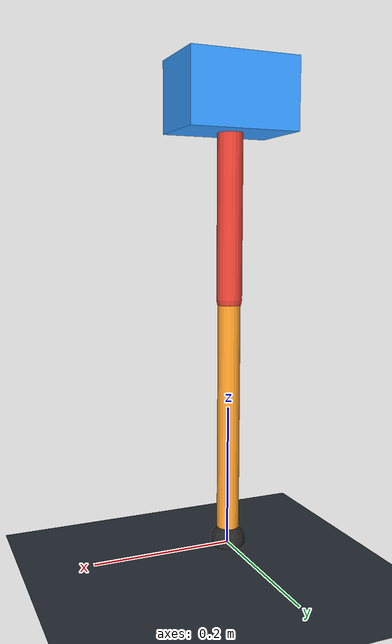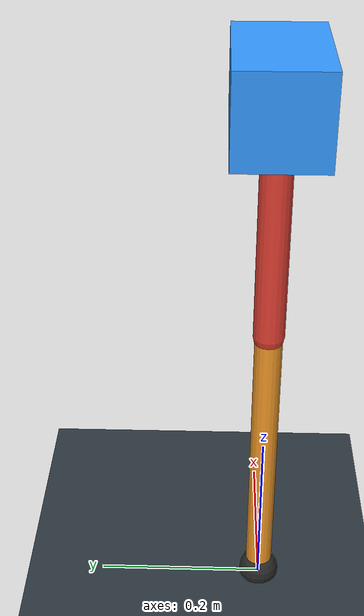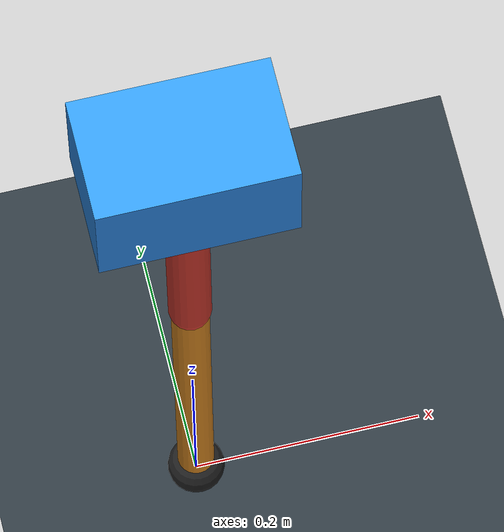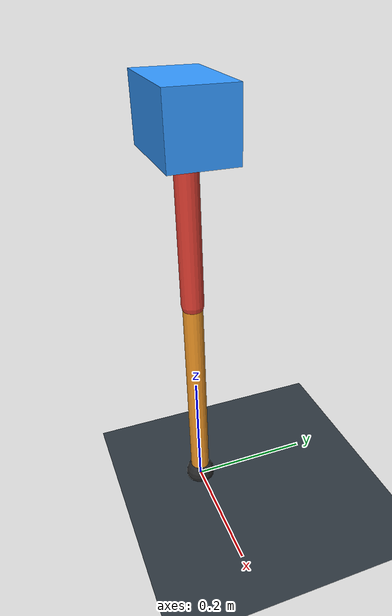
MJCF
<mujoco model="single_axis_two_bar">
  <compiler angle="radian" inertiafromgeom="true"/>
  <option timestep="0.001" integrator="implicitfast" gravity="0 0 -9.81"/>
  <default>
    <joint damping="0.08"/>
    <geom friction="1.2 0.01 0.0001" condim="3"/>
  </default>
  <worldbody>
    <geom name="floor" type="plane" size="5 5 0.1" rgba="0.18 0.22 0.25 1"/>
    <body name="carriage" pos="0 0 0.6358374725589918">
      <joint name="pole_slide" type="slide" axis="0 0 1"/>
      <geom name="payload" type="box" size="0.08 0.05 0.05" mass="3.0708640465746293" rgba="0.2 0.6 1 1"/>
      <body name="thigh" pos="0 0 0">
        <joint name="hip" type="hinge" axis="0 1 0"/>
        <geom name="thigh_link" type="capsule" fromto="0 0 0 0 0 -0.27996581089442374" size="0.018" mass="0.19947933968407394" rgba="0.9 0.25 0.2 1"/>
        <body name="shank" pos="0 0 -0.27996581089442374">
          <joint name="knee" type="hinge" axis="0 1 0"/>
          <geom name="shank_link" type="capsule" fromto="0 0 0 0 0 -0.34976354225917605" size="0.016" mass="0.2492111455771073" rgba="0.95 0.6 0.15 1"/>
          <geom name="foot" type="sphere" pos="0 0 -0.34976354225917605" size="0.025" mass="0.03" rgba="0.15 0.15 0.15 1"/>
          <site name="toe" pos="0 0 -0.34976354225917605" size="0.008"/>
        </body>
      </body>
    </body>
  </worldbody>
  <actuator>
    <motor name="hip_motor" joint="hip" ctrlrange="-68.73514703829267 68.73514703829267"/>
    <motor name="knee_motor" joint="knee" ctrlrange="-22.412255708997957 22.412255708997957"/>
  </actuator>
</mujoco>
